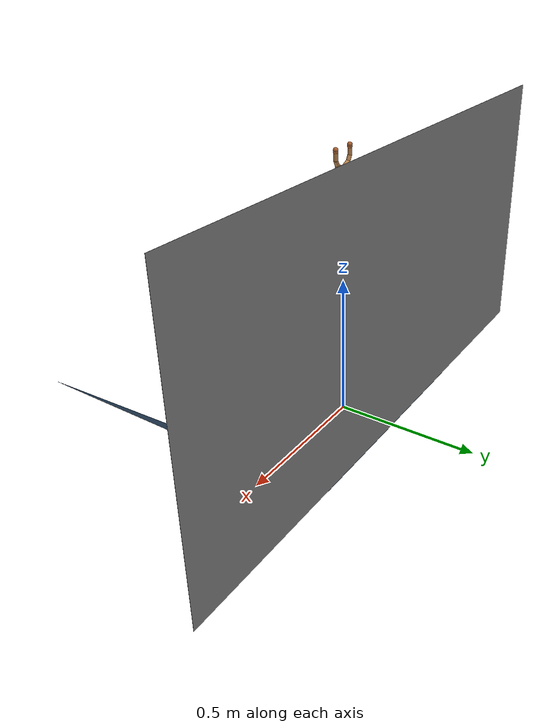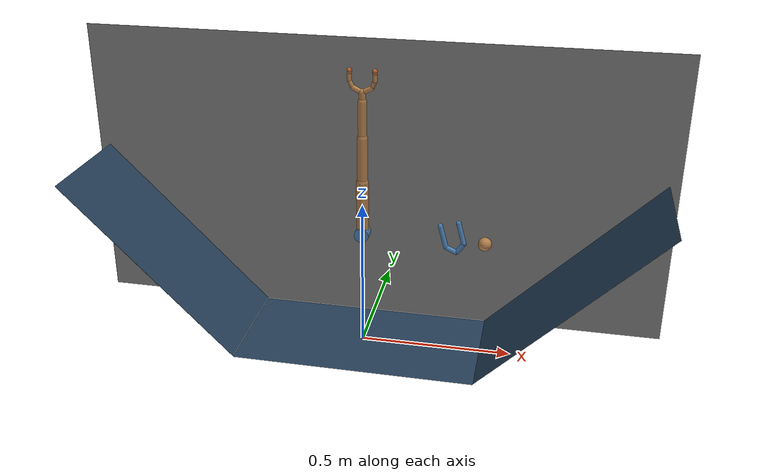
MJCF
<mujoco model="merged">
  <option timestep="0.001" cone="elliptic"/>
  <visual>
    <headlight ambient=".4 .4 .4" diffuse=".8 .8 .8" specular="0.1 0.1 0.1"/>
    <map znear=".01"/>
    <quality shadowsize="2048"/>
  </visual>
  <default>

    <geom friction=".7" solimp="0.9 0.97 0.001" solref=".005 1"/>
    <joint solimplimit="0 0.99 0.01" solreflimit=".005 1"/>
    <motor ctrllimited="true"/>
    <tendon width="0.01"/>
    <site size=".003 .003 .003" material="site" group="3"/>

    <default class="arm">
      <geom type="capsule" material="self" density="500"/>
      <joint type="hinge" pos="0 0 0" axis="0 -1 0" limited="true"/>
      <default class="hand">
        <joint damping=".5" range="-10 60"/>
        <geom size=".008"/>
        <site  type="box" size=".018 .005 .005" pos=".022 0 -.002" euler="0 15 0" group="4"/>
        <default class="fingertip">
          <geom type="sphere" size=".008" material="effector"/>
          <joint damping=".01" stiffness=".01" range="-40 20"/>
          <site  size=".012 .005 .008" pos=".003 0 .003" group="4" euler="0 0 0"/>
        </default>
      </default>
    </default>

    <default class="object">
      <geom material="self"/>
    </default>

    <default class="task">
      <site rgba="0 0 0 0"/>
    </default>

    <default class="obstacle">
      <geom material="decoration" friction="0"/>
    </default>

    <default class="ghost">
      <geom material="target" contype="0" conaffinity="0"/>
    </default>

  </default>
  <asset>

      <texture name="skybox" type="skybox" builtin="gradient" rgb1=".4 .6 .8" rgb2="0 0 0"
               width="800" height="800" mark="random" markrgb="1 1 1"/>

    <texture name="grid" type="2d" builtin="checker" rgb1=".1 .2 .3" rgb2=".2 .3 .4" width="300" height="300" mark="edge" markrgb=".2 .3 .4"/>
    <material name="grid" texture="grid" texrepeat="1 1" texuniform="true" reflectance=".2"/>
    <material name="self" rgba=".7 .5 .3 1"/>
    <material name="self_default" rgba=".7 .5 .3 1"/>
    <material name="self_highlight" rgba="0 .5 .3 1"/>
    <material name="effector" rgba=".7 .4 .2 1"/>
    <material name="effector_default" rgba=".7 .4 .2 1"/>
    <material name="effector_highlight" rgba="0 .5 .3 1"/>
    <material name="decoration" rgba=".3 .5 .7 1"/>
    <material name="eye" rgba="0 .2 1 1"/>
    <material name="target" rgba=".6 .3 .3 1"/>
    <material name="target_default" rgba=".6 .3 .3 1"/>
    <material name="target_highlight" rgba=".6 .3 .3 .4"/>
    <material name="site" rgba=".5 .5 .5 .3"/>

  </asset>
  <worldbody>

    <light name="light" directional="true" diffuse=".6 .6 .6" pos="0 0 1" specular=".3 .3 .3"/>
    <geom name="floor" type="plane" pos="0 0 0" size=".4 .2 10" material="grid"/>
    <geom name="wall1" type="plane" pos="-.682843 0 .282843" size=".4 .2 10" material="grid" zaxis="1 0 1"/>
    <geom name="wall2" type="plane" pos=".682843 0 .282843" size=".4 .2 10" material="grid" zaxis="-1 0 1"/>
    <geom name="background" type="plane" pos="0 .2 .5" size="1 .5 10" zaxis="0 -1 0"/>
    <camera name="fixed" pos="0 -16 .4" xyaxes="1 0 0 0 0 1" fovy="4"/>

    <geom name="arm_root" type="cylinder" fromto="0 -.022 .4 0 .022 .4" size=".024"
          material="decoration" contype="0" conaffinity="0"/>
    <body name="upper_arm" pos="0 0 .4" childclass="arm">
      <joint name="arm_root" damping="2" limited="false"/>
      <geom  name="upper_arm"  size=".02" fromto="0 0 0 0 0 .18"/>
      <body  name="middle_arm" pos="0 0 .18" childclass="arm">
        <joint name="arm_shoulder" damping="1.5" range="-160 160"/>
        <geom  name="middle_arm"  size=".017" fromto="0 0 0 0 0 .15"/>
        <body  name="lower_arm" pos="0 0 .15">
          <joint name="arm_elbow" damping="1" range="-160 160"/>
          <geom  name="lower_arm" size=".014" fromto="0 0 0 0 0 .12"/>
          <body  name="hand" pos="0 0 .12">
            <joint name="arm_wrist" damping=".5" range="-140 140" />
            <geom  name="hand" size=".011" fromto="0 0 0 0 0 .03"/>
            <geom  name="palm1"  fromto="0 0 .03  .03 0 .045" class="hand"/>
            <geom  name="palm2"  fromto="0 0 .03 -.03 0 .045" class="hand"/>
            <site  name="grasp" pos="0 0 .065"/>
            <body  name="pinch site" pos="0 0 .090">
              <site  name="pinch"/>
              <inertial pos="0 0 0" mass="1e-6" diaginertia="1e-12 1e-12 1e-12"/>
              <camera name="hand" pos="0 -.3 0" xyaxes="1 0 0 0 0 1" mode="track"/>
            </body>
            <site  name="palm_touch" type="box" group="4" size=".025 .005 .008" pos="0 0 .043"/>

            <body name="thumb" pos=".03 0 .045" euler="0 -90 0" childclass="hand">
              <joint name="thumb"/>
              <geom  name="thumb1"  fromto="0 0 0 .02 0 -.01" size=".007"/>
              <geom  name="thumb2"  fromto=".02 0 -.01 .04 0 -.01" size=".007"/>
              <site  name="thumb_touch" group="4"/>
              <body  name="thumbtip" pos=".05 0 -.01" childclass="fingertip">
                <joint name="thumbtip"/>
                <geom  name="thumbtip1" pos="-.003 0 0" />
                <geom  name="thumbtip2" pos=".003 0 0" />
                <site  name="thumbtip_touch" group="4"/>
              </body>
            </body>

            <body name="finger" pos="-.03 0 .045" euler="0 90 180" childclass="hand">
              <joint name="finger"/>
              <geom  name="finger1"  fromto="0 0 0 .02 0 -.01" size=".007" />
              <geom  name="finger2"  fromto=".02 0 -.01 .04 0 -.01" size=".007"/>
              <site  name="finger_touch"/>
              <body  name="fingertip" pos=".05 0 -.01" childclass="fingertip">
                <joint name="fingertip"/>
                <geom  name="fingertip1" pos="-.003 0 0" />
                <geom  name="fingertip2" pos=".003 0 0" />
                <site  name="fingertip_touch"/>
              </body>
            </body>
          </body>
        </body>
      </body>
    </body>

    <body name="ball" pos=".4 0 .4" childclass="object">
      <joint name="ball_x" type="slide" axis="1 0 0" ref=".4"/>
      <joint name="ball_z" type="slide" axis="0 0 1" ref=".4"/>
      <joint name="ball_y" type="hinge" axis="0 1 0"/>
      <geom  name="ball" type="sphere" size=".022" />
      <site  name="ball" type="sphere"/>
    </body>

    <body name="cup" pos=".3 0 .4" euler="0 -15 0" childclass="obstacle" mocap="true">
      <geom name="cup_0" type="capsule" size=".008" fromto="-.03 0 .06 -.03 0 -.015" />
      <geom name="cup_1" type="capsule" size=".008" fromto="-.03 0 -.015 0 0 -.04" />
      <geom name="cup_2" type="capsule" size=".008" fromto="0 0 -.04 .03 0 -.015" />
      <geom name="cup_3" type="capsule" size=".008" fromto=".03 0 -.015 .03 0 .06" />
      <site name="cup" size=".005"/>
    </body>

    <body name="target_ball" pos=".4 .001 .4" childclass="ghost" mocap="true">
      <geom  name="target_ball" type="sphere" size=".02" />
      <site  name="target_ball" type="sphere"/>
    </body>

  </worldbody>
  <tendon>

    <fixed name="grasp">
      <joint joint="thumb"  coef=".5"/>
      <joint joint="finger" coef=".5"/>
    </fixed>
    <fixed name="coupling">
      <joint joint="thumb"  coef="-.5"/>
      <joint joint="finger" coef=".5"/>
    </fixed>

  </tendon>
  <actuator>

    <motor name="root"     joint="arm_root"     ctrlrange="-1 1"  gear="12"/>
    <motor name="shoulder" joint="arm_shoulder" ctrlrange="-1 1"  gear="8"/>
    <motor name="elbow"    joint="arm_elbow"    ctrlrange="-1 1"  gear="4"/>
    <motor name="wrist"    joint="arm_wrist"    ctrlrange="-1 1"  gear="2"/>
    <motor name="grasp"    tendon="grasp"       ctrlrange="-1 1"  gear="2"/>

  </actuator>
  <equality>

    <tendon name="coupling" tendon1="coupling" solimp="0.95 0.99 0.001" solref=".005 .5"/>

  </equality>
  <sensor>

    <touch name="palm_touch" site="palm_touch"/>
    <touch name="finger_touch" site="finger_touch"/>
    <touch name="thumb_touch" site="thumb_touch"/>
    <touch name="fingertip_touch" site="fingertip_touch"/>
    <touch name="thumbtip_touch" site="thumbtip_touch"/>

  </sensor>
</mujoco>
